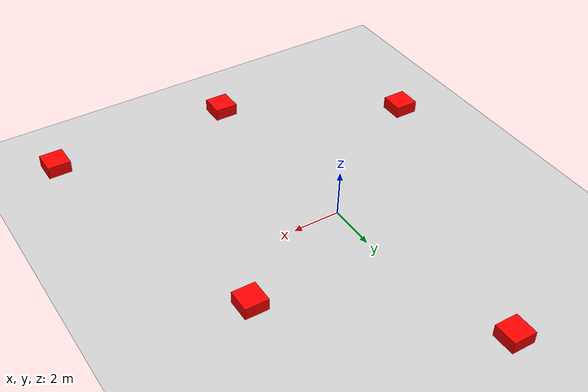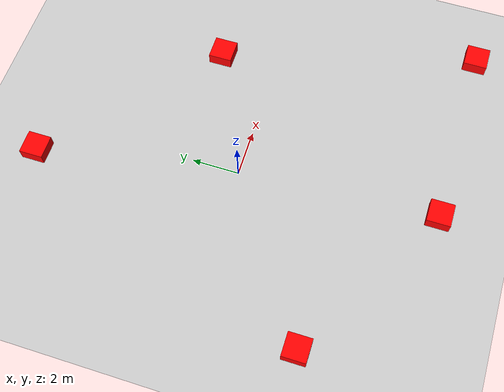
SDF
<sdf version="1.7">
 <world name="default">
  <light name="sun" type="directional">
   <pose>0 0 10 0 -0 0</pose>
   <diffuse>0.8 0.8 0.8 1</diffuse>
   <specular>0.2 0.2 0.2 1</specular>
   <attenuation>
    <range>1000</range>
    <constant>0.9</constant>
    <linear>0.01</linear>
    <quadratic>0.001</quadratic>
   </attenuation>
   <direction>-0.5 0.1 -0.9</direction>
   <spot><inner_angle>0</inner_angle><outer_angle>0</outer_angle><falloff>0</falloff></spot>
  </light>
  <model name="ground_plane">
   <static>1</static>
   <link name="link">
    <collision name="collision">
     <geometry><plane><normal>0 0 1</normal><size>100 100</size></plane></geometry>
     <surface><friction><ode><mu>100</mu><mu2>50</mu2></ode></friction></surface>
    </collision>
    <visual name="visual">
     <cast_shadows>0</cast_shadows>
     <geometry><plane><normal>0 0 1</normal><size>100 100</size></plane></geometry>
     <material>
      <script><uri>file://media/materials/scripts/gazebo.material</uri><name>Gazebo/Grey</name></script>
     </material>
    </visual>
   </link>
  </model>
  <gravity>0 0 -9.8</gravity>
  <magnetic_field>6e-06 2.3e-05 -4.2e-05</magnetic_field>
  <atmosphere type="adiabatic"/>
  <physics type="ode">
   <max_step_size>0.001</max_step_size>
   <real_time_factor>1</real_time_factor>
   <real_time_update_rate>1000</real_time_update_rate>
  </physics>
  <scene><ambient>0.4 0.4 0.4 1</ambient><background>0.7 0.7 0.7 1</background><shadows>1</shadows></scene>
  <spherical_coordinates>
   <surface_model>EARTH_WGS84</surface_model>
   <latitude_deg>0</latitude_deg>
   <longitude_deg>0</longitude_deg>
   <elevation>0</elevation>
   <heading_deg>0</heading_deg>
  </spherical_coordinates>
  <model name="red_box">
   <static>1</static>
   <link name="link">
    <visual name="visual">
     <geometry><box><size>1 1 1</size></box></geometry>
     <material>
      <ambient>1 0 0 1</ambient>
      <diffuse>1 0 0 1</diffuse>
      <specular>0.1 0.1 0.1 1</specular>
      <emissive>0 0 0 0</emissive>
     </material>
    </visual>
   </link>
   <pose>5.48978 2.49538 0 0 -0 0</pose>
  </model>
  <model name="red_box_0">
   <static>1</static>
   <link name="link">
    <collision name="collision"><geometry><box><size>1 1 1</size></box></geometry></collision>
    <visual name="visual">
     <geometry><box><size>1 1 1</size></box></geometry>
     <material>
      <ambient>1 0 0 1</ambient>
      <diffuse>1 0 0 1</diffuse>
      <specular>0.1 0.1 0.1 1</specular>
      <emissive>0 0 0 0</emissive>
     </material>
    </visual>
   </link>
   <pose>-1.49585 8.50567 0 0 -0 0</pose>
  </model>
  <model name="red_box_1">
   <static>1</static>
   <link name="link">
    <collision name="collision"><geometry><box><size>1 1 1</size></box></geometry></collision>
    <visual name="visual">
     <geometry><box><size>1 1 1</size></box></geometry>
     <material>
      <ambient>1 0 0 1</ambient>
      <diffuse>1 0 0 1</diffuse>
      <specular>0.1 0.1 0.1 1</specular>
      <emissive>0 0 0 0</emissive>
     </material>
    </visual>
   </link>
   <pose>-6.49946 -4.47174 0 0 -0 0</pose>
  </model>
  <model name="red_box_2">
   <static>1</static>
   <link name="link">
    <collision name="collision"><geometry><box><size>1 1 1</size></box></geometry></collision>
    <visual name="visual">
     <geometry><box><size>1 1 1</size></box></geometry>
     <material>
      <ambient>1 0 0 1</ambient>
      <diffuse>1 0 0 1</diffuse>
      <specular>0.1 0.1 0.1 1</specular>
      <emissive>0 0 0 0</emissive>
     </material>
    </visual>
   </link>
   <pose>8.49896 -8.44508 0 0 -0 0</pose>
  </model>
  <model name="red_box_3">
   <static>1</static>
   <link name="link">
    <collision name="collision"><geometry><box><size>1 1 1</size></box></geometry></collision>
    <visual name="visual">
     <geometry><box><size>1 1 1</size></box></geometry>
     <material>
      <ambient>1 0 0 1</ambient>
      <diffuse>1 0 0 1</diffuse>
      <specular>0.1 0.1 0.1 1</specular>
      <emissive>0 0 0 0</emissive>
     </material>
    </visual>
   </link>
   <pose>0.536916 -8.47741 0 0 -0 0</pose>
  </model>
 </world>
</sdf>
